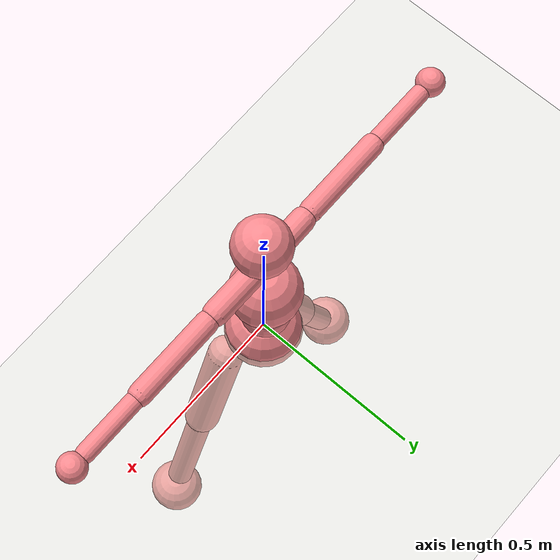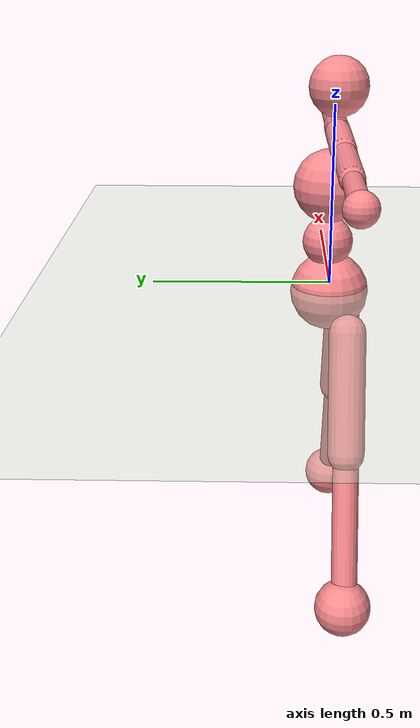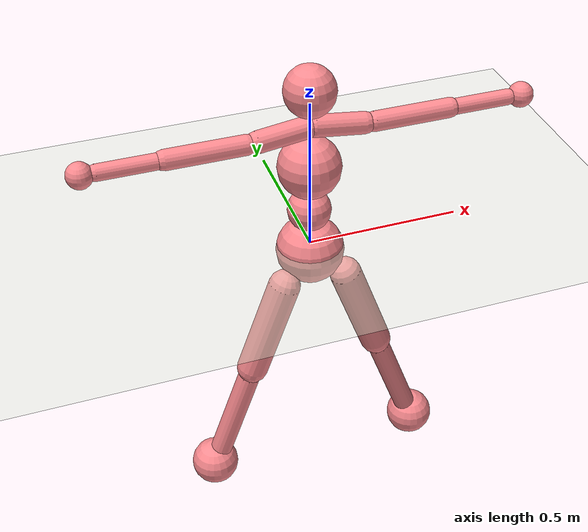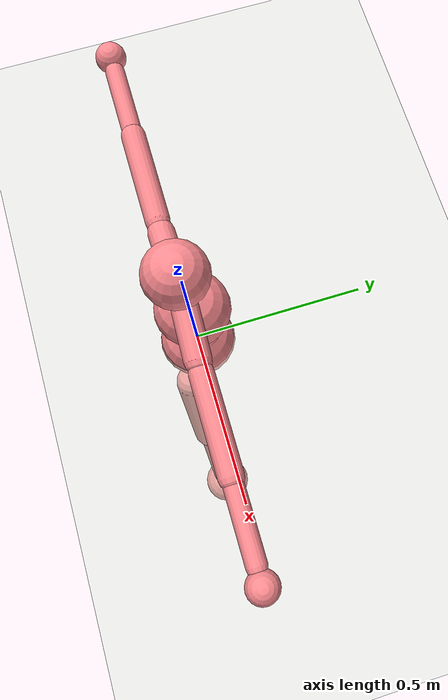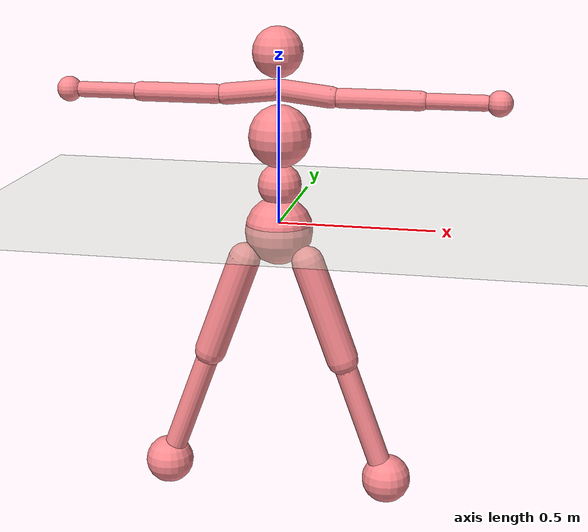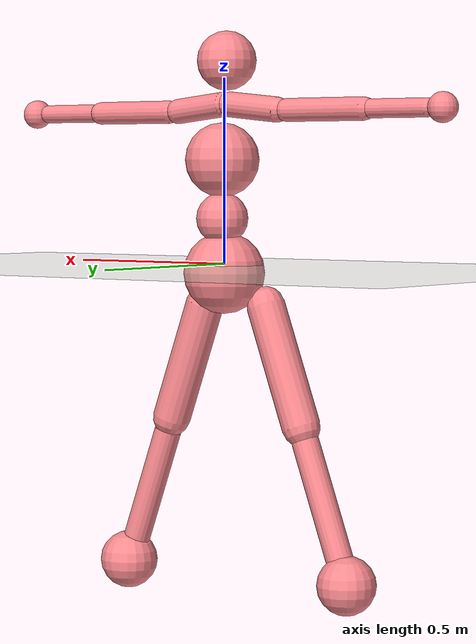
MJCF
<mujoco model="humanoid">
  <compiler angle="degree" inertiafromgeom="true" coordinate="global"/>
  <include file="./common/materials.xml"/>
  <asset>
    <mesh name="cone" file="./common/cone.stl" scale="0.025 0.025 0.04"/>
  </asset>
  <visual>
    <headlight ambient=".4 .4 .4" diffuse=".8 .8 .8" specular="0.3 0.3 0.3"/>
    <map znear=".01"/>
    <quality shadowsize="2048"/>
  </visual>
  <default>
    <joint damping="0.0" armature="0.01" stiffness="0.0" limited="true"/>
    <geom conaffinity="7" condim="1" contype="7" margin="0.001" material="self" rgba=".98 .54 .56 1."/>
    <default class="trans">
      <geom rgba="0.8 0.6 .4 0.3"/>
    </default>
  </default>
  <statistic extent="3" center="0 0 1"/>
  <option timestep="0.00222222222">
    <flag contact="disable"/>
  </option>
  <asset>
    <texture type="skybox" file="./common/sky1.png" gridsize="3 4" gridlayout=".U..LFRB.D.." width="8192" height="8192"/>
    <texture builtin="flat" height="1278" mark="cross" markrgb="1 1 1" name="texgeom" random="0.01" rgb1=".8 .6 .4" rgb2=".8 .6 .4" type="cube" width="127"/>
  </asset>
  <worldbody>
    <light cutoff="100" diffuse="1 1 1" dir="-0 0 -1.3" directional="true" exponent="1" pos="0 0 1.3" specular=".1 .1 .1"/>
    <geom condim="3" friction="1. .1 .1" material="grid_new" name="floor" pos="0 0 0" rgba=".8 .9 .8 1" size="100 100 .2" type="plane"/>
    <body name="root" user="0.0000 -0.0000 0.0000" pos="0.0000 -0.0000 0.0000">
      <joint armature="0.0" limited="false" name="root" pos="0.0000 -0.0000 0.0000" stiffness="0" type="free"/>
      <geom pos="0.0000 0.0000 -0.0240" size="0.1100" type="sphere"/>
      <body name="lhipjoint" user="0.0963 -0.0494 -0.0918" pos="0.0000 -0.0000 0.0000">
        <body name="lfemur" user="0.2274 -0.0494 -0.4521" pos="0.0963 -0.0494 -0.0918">
          <joint axis="0.0000 -1.0000 0.0000" name="lfemur_z" pos="0.0963 -0.0494 -0.0918" range="-60.0000 70.0000" type="hinge"/>
          <joint axis="-0.3420 -0.0000 0.9397" name="lfemur_y" pos="0.0963 -0.0494 -0.0918" range="-70.0000 70.0000" type="hinge"/>
          <joint axis="0.9397 0.0000 0.3420" name="lfemur_x" pos="0.0963 -0.0494 -0.0918" range="-160.0000 20.0000" type="hinge"/>
          <geom fromto="0.1031 -0.0494 -0.1106 0.2206 -0.0494 -0.4333" size="0.0520" type="capsule"/>
          <body name="ltibia" user="0.3657 -0.0494 -0.8321" pos="0.2274 -0.0494 -0.4521">
            <joint axis="0.9397 0.0000 0.3420" name="ltibia_x" pos="0.2274 -0.0494 -0.4521" range="0.0000 170.0000" type="hinge"/>
            <geom contype="1" conaffinity="1" fromto="0.2343 -0.0494 -0.4709 0.3589 -0.0494 -0.8133" size="0.0370" type="capsule"/>
            <body name="lfoot" user="0.3731 -0.0 -0.8523" pos="0.3657 -0.0494 -0.8321">
              <geom size="0.08" pos="0.3714 -0.045 -0.8442"/>
            </body>
          </body>
        </body>
      </body>
      <body name="rhipjoint" user="-0.0963 -0.0494 -0.0918" pos="-0.0000 -0.0000 0.0000">
        <body name="rfemur" user="-0.2274 -0.0494 -0.4521" pos="-0.0963 -0.0494 -0.0918">
          <joint axis="0.0000 -1.0000 -0.0000" name="rfemur_z" pos="-0.0963 -0.0494 -0.0918" range="-70.0000 60.0000" type="hinge"/>
          <joint axis="0.3420 -0.0000 0.9397" name="rfemur_y" pos="-0.0963 -0.0494 -0.0918" range="-70.0000 70.0000" type="hinge"/>
          <joint axis="0.9397 0.0000 -0.3420" name="rfemur_x" pos="-0.0963 -0.0494 -0.0918" range="-160.0000 20.0000" type="hinge"/>
          <geom fromto="-0.1031 -0.0494 -0.1106 -0.2206 -0.0494 -0.4333" size="0.0520" type="capsule"/>
          <body name="rtibia" user="-0.3657 -0.0494 -0.8321" pos="-0.2274 -0.0494 -0.4521">
            <joint axis="0.9397 0.0000 -0.3420" name="rtibia_x" pos="-0.2274 -0.0494 -0.4521" range="0.0000 170.0000" type="hinge"/>
            <geom contype="2" conaffinity="2" fromto="-0.2343 -0.0494 -0.4709 -0.3589 -0.0494 -0.8133" size="0.0370" type="capsule"/>
            <body name="rfoot" user="-0.3731 -0.0 -0.8523" pos="-0.3657 -0.0494 -0.8321">
              <geom size="0.08" pos="-0.3714 -0.045 -0.8442" type="sphere"/>
            </body>
          </body>
        </body>
      </body>
      <body name="lowerback" user="0.0006 0.0081 0.1132" pos="0.0000 -0.0000 0.0000">
        <body name="upperback" user="0.0011 0.0071 0.2268" pos="0.0006 0.0081 0.1132">
          <geom pos="0.0006 0.0081 0.1232" size="0.0700" type="sphere"/>
          <joint axis="0.0000 -1.0000 0.0000" name="upperback_z" pos="0.0006 0.0081 0.1132" range="-30.0000 30.0000" type="hinge"/>
          <joint axis="0.0000 -0.0000 1.0000" name="upperback_y" pos="0.0006 0.0081 0.1132" range="-30.0000 30.0000" type="hinge"/>
          <joint axis="1.0000 0.0000 0.0000" name="upperback_x" pos="0.0006 0.0081 0.1132" range="-20.0000 45.0000" type="hinge"/>
          <body name="thorax" user="0.0010 0.0024 0.3407" pos="0.0011 0.0071 0.2268">
            <geom pos="0.0011 0.0071 0.2808" size="0.1000" type="sphere"/>
            <body name="lowerneck" user="-0.0023 -0.0083 0.4312" pos="0.0010 0.0024 0.3407">
              <geom pos="-0.0023 -0.0083 0.5472" size="0.0800" type="sphere"/>
              <joint axis="0.0000 -1.0000 0.0000" name="lowerneck_z" pos="0.0010 0.0024 0.3407" range="-30.0000 30.0000" type="hinge"/>
              <joint axis="0.0000 -0.0000 1.0000" name="lowerneck_y" pos="0.0010 0.0024 0.3407" range="-30.0000 30.0000" type="hinge"/>
              <joint axis="1.0000 0.0000 0.0000" name="lowerneck_x" pos="0.0010 0.0024 0.3407" range="-20.0000 45.0000" type="hinge"/>
              <body name="upperneck" user="-0.0013 -0.0038 0.5212" pos="-0.0023 -0.0083 0.4312">
                <body name="head" user="-0.0006 -0.0008 0.6176" pos="-0.0013 -0.0038 0.5212">
                  <camera mode="fixed" xyaxes="-1 0 0 0 0 1"/>
                </body>
              </body>
              <body name="lclavicle" user="0.1790 -0.0149 0.4121" pos="-0.0023 -0.0083 0.4312">
                <geom fromto="0.0101 -0.0088 0.4299 0.1666 -0.0144 0.4134" size="0.0340" type="capsule"/>
                <joint axis="0.0000 -1.0000 0.0000" name="lclavicle_z" pos="0.0010 0.0024 0.3407" range="0.0000 20.0000" type="hinge"/>
                <joint axis="0.0000 -0.0000 1.0000" name="lclavicle_y" pos="0.0010 0.0024 0.3407" range="-20.0000 10.0000" type="hinge"/>
                <body name="lhumerus" user="0.4599 -0.0149 0.4121" pos="0.1790 -0.0149 0.4121">
                  <joint axis="-0.0000 0.8660 -0.5000" name="lhumerus_z" pos="0.1790 -0.0149 0.4121" range="-90.0000 90.0000" type="hinge"/>
                  <joint axis="-1.0000 -0.0000 -0.0000" name="lhumerus_y" pos="0.1790 -0.0149 0.4121" range="-90.0000 90.0000" type="hinge"/>
                  <joint axis="0.0000 -0.5000 -0.8660" name="lhumerus_x" pos="0.1790 -0.0149 0.4121" range="-60.0000 90.0000" type="hinge"/>
                  <geom fromto="0.1965 -0.0149 0.4121 0.4424 -0.0149 0.4121" size="0.0310" type="capsule"/>
                  <body name="lradius" user="0.6374 -0.0149 0.4121" pos="0.4599 -0.0149 0.4121">
                    <geom fromto="0.4599 -0.0149 0.4121 0.6374 -0.0149 0.4121" size="0.0250" type="capsule"/>
                    <joint axis="0.0000 -0.5000 -0.8660" name="lradius_x" pos="0.4599 -0.0149 0.4121" range="-10.0000 170.0000" type="hinge"/>
                    <body name="lwrist" user="0.7261 -0.0149 0.4121" pos="0.6374 -0.0149 0.4121">
                      <geom pos="0.6814 -0.0149 0.4121" size="0.0400" type="sphere"/>
                    </body>
                  </body>
                </body>
              </body>
              <body name="rclavicle" user="-0.1790 -0.0149 0.4121" pos="0.0023 -0.0083 0.4312">
                <geom fromto="-0.0101 -0.0088 0.4299 -0.1666 -0.0144 0.4134" size="0.0340" type="capsule"/>
                <joint axis="0.0000 -1.0000 0.0000" name="rclavicle_z" pos="-0.0010 0.0024 0.3407" range="-20.0000 0.0000" type="hinge"/>
                <joint axis="0.0000 -0.0000 1.0000" name="rclavicle_y" pos="-0.0010 0.0024 0.3407" range="-10.0000 20.0000" type="hinge"/>
                <body name="rhumerus" user="-0.4599 -0.0149 0.4121" pos="-0.1790 -0.0149 0.4121">
                  <joint axis="0.0000 0.8660 -0.5000" name="rhumerus_z" pos="-0.1790 -0.0149 0.4121" range="-90.0000 90.0000" type="hinge"/>
                  <joint axis="1.0000 -0.0000 -0.0000" name="rhumerus_y" pos="-0.1790 -0.0149 0.4121" range="-90.0000 90.0000" type="hinge"/>
                  <joint axis="0.0000 0.5000 0.8660" name="rhumerus_x" pos="-0.1790 -0.0149 0.4121" range="-90.0000 60.0000" type="hinge"/>
                  <geom fromto="-0.1965 -0.0149 0.4121 -0.4424 -0.0149 0.4121" size="0.0310" type="capsule"/>
                  <body name="rradius" user="-0.6374 -0.0149 0.4121" pos="-0.4599 -0.0149 0.4121">
                    <geom fromto="-0.4599 -0.0149 0.4121 -0.6374 -0.0149 0.4121" size="0.0250" type="capsule"/>
                    <joint axis="0.0000 0.5000 0.8660" name="rradius_x" pos="-0.4599 -0.0149 0.4121" range="-10.0000 170.0000" type="hinge"/>
                    <body name="rwrist" user="-0.7261 -0.0149 0.4121" pos="-0.6374 -0.0149 0.4121">
                      <geom pos="-0.6814 -0.0149 0.4121" size="0.0400" type="sphere"/>
                    </body>
                  </body>
                </body>
              </body>
            </body>
          </body>
        </body>
      </body>
    </body>
    <body name="1_root" user="0.0000 -0.0000 0.0000" pos="0.0000 -0.0000 0.0000">
      <joint armature="0.0" limited="false" name="1_root" pos="0.0000 -0.0000 0.0000" stiffness="0" type="free"/>
      <geom pos="0.0000 0.0000 -0.0240" size="0.1100" type="sphere"/>
      <body name="1_lhipjoint" user="0.0963 -0.0494 -0.0918" pos="0.0000 -0.0000 0.0000">
        <body name="1_lfemur" user="0.2274 -0.0494 -0.4521" pos="0.0963 -0.0494 -0.0918">
          <joint axis="0.0000 -1.0000 0.0000" name="1_lfemur_z" pos="0.0963 -0.0494 -0.0918" range="-60.0000 70.0000" type="hinge"/>
          <joint axis="-0.3420 -0.0000 0.9397" name="1_lfemur_y" pos="0.0963 -0.0494 -0.0918" range="-70.0000 70.0000" type="hinge"/>
          <joint axis="0.9397 0.0000 0.3420" name="1_lfemur_x" pos="0.0963 -0.0494 -0.0918" range="-160.0000 20.0000" type="hinge"/>
          <geom fromto="0.1031 -0.0494 -0.1106 0.2206 -0.0494 -0.4333" size="0.0520" type="capsule"/>
          <body name="1_ltibia" user="0.3657 -0.0494 -0.8321" pos="0.2274 -0.0494 -0.4521">
            <joint axis="0.9397 0.0000 0.3420" name="1_ltibia_x" pos="0.2274 -0.0494 -0.4521" range="0.0000 170.0000" type="hinge"/>
            <geom contype="1" conaffinity="1" fromto="0.2343 -0.0494 -0.4709 0.3589 -0.0494 -0.8133" size="0.0370" type="capsule"/>
            <body name="1_lfoot" user="0.3731 -0.0 -0.8523" pos="0.3657 -0.0494 -0.8321">
              <geom size="0.08" pos="0.3714 -0.045 -0.8442" type="sphere"/>
            </body>
          </body>
        </body>
      </body>
      <body name="1_rhipjoint" user="-0.0963 -0.0494 -0.0918" pos="-0.0000 -0.0000 0.0000">
        <body name="1_rfemur" user="-0.2274 -0.0494 -0.4521" pos="-0.0963 -0.0494 -0.0918">
          <joint axis="0.0000 -1.0000 -0.0000" name="1_rfemur_z" pos="-0.0963 -0.0494 -0.0918" range="-70.0000 60.0000" type="hinge"/>
          <joint axis="0.3420 -0.0000 0.9397" name="1_rfemur_y" pos="-0.0963 -0.0494 -0.0918" range="-70.0000 70.0000" type="hinge"/>
          <joint axis="0.9397 0.0000 -0.3420" name="1_rfemur_x" pos="-0.0963 -0.0494 -0.0918" range="-160.0000 20.0000" type="hinge"/>
          <geom fromto="-0.1031 -0.0494 -0.1106 -0.2206 -0.0494 -0.4333" size="0.0520" type="capsule"/>
          <body name="1_rtibia" user="-0.3657 -0.0494 -0.8321" pos="-0.2274 -0.0494 -0.4521">
            <joint axis="0.9397 0.0000 -0.3420" name="1_rtibia_x" pos="-0.2274 -0.0494 -0.4521" range="0.0000 170.0000" type="hinge"/>
            <geom contype="2" conaffinity="2" fromto="-0.2343 -0.0494 -0.4709 -0.3589 -0.0494 -0.8133" size="0.0370" type="capsule"/>
            <body name="1_rfoot" user="-0.3731 -0.0 -0.8523" pos="-0.3657 -0.0494 -0.8321">
              <geom size="0.08" pos="-0.3714 -0.045 -0.8442" type="sphere"/>
            </body>
          </body>
        </body>
      </body>
      <body name="1_lowerback" user="0.0006 0.0081 0.1132" pos="0.0000 -0.0000 0.0000">
        <body name="1_upperback" user="0.0011 0.0071 0.2268" pos="0.0006 0.0081 0.1132">
          <geom pos="0.0006 0.0081 0.1232" size="0.0700" type="sphere"/>
          <joint axis="0.0000 -1.0000 0.0000" name="1_upperback_z" pos="0.0006 0.0081 0.1132" range="-30.0000 30.0000" type="hinge"/>
          <joint axis="0.0000 -0.0000 1.0000" name="1_upperback_y" pos="0.0006 0.0081 0.1132" range="-30.0000 30.0000" type="hinge"/>
          <joint axis="1.0000 0.0000 0.0000" name="1_upperback_x" pos="0.0006 0.0081 0.1132" range="-20.0000 45.0000" type="hinge"/>
          <body name="1_thorax" user="0.0010 0.0024 0.3407" pos="0.0011 0.0071 0.2268">
            <geom pos="0.0011 0.0071 0.2808" size="0.1000" type="sphere"/>
            <body name="1_lowerneck" user="-0.0023 -0.0083 0.4312" pos="0.0010 0.0024 0.3407">
              <geom pos="-0.0023 -0.0083 0.5472" size="0.0800" type="sphere"/>
              <joint axis="0.0000 -1.0000 0.0000" name="1_lowerneck_z" pos="0.0010 0.0024 0.3407" range="-30.0000 30.0000" type="hinge"/>
              <joint axis="0.0000 -0.0000 1.0000" name="1_lowerneck_y" pos="0.0010 0.0024 0.3407" range="-30.0000 30.0000" type="hinge"/>
              <joint axis="1.0000 0.0000 0.0000" name="1_lowerneck_x" pos="0.0010 0.0024 0.3407" range="-20.0000 45.0000" type="hinge"/>
              <body name="1_upperneck" user="-0.0013 -0.0038 0.5212" pos="-0.0023 -0.0083 0.4312">
                <body name="1_head" user="-0.0006 -0.0008 0.6176" pos="-0.0013 -0.0038 0.5212">
                  <camera mode="fixed" xyaxes="-1 0 0 0 0 1"/>
                </body>
              </body>
              <body name="1_lclavicle" user="0.1790 -0.0149 0.4121" pos="-0.0023 -0.0083 0.4312">
                <geom fromto="0.0101 -0.0088 0.4299 0.1666 -0.0144 0.4134" size="0.0340" type="capsule"/>
                <joint axis="0.0000 -1.0000 0.0000" name="1_lclavicle_z" pos="0.0010 0.0024 0.3407" range="0.0000 20.0000" type="hinge"/>
                <joint axis="0.0000 -0.0000 1.0000" name="1_lclavicle_y" pos="0.0010 0.0024 0.3407" range="-20.0000 10.0000" type="hinge"/>
                <body name="1_lhumerus" user="0.4599 -0.0149 0.4121" pos="0.1790 -0.0149 0.4121">
                  <joint axis="-0.0000 0.8660 -0.5000" name="1_lhumerus_z" pos="0.1790 -0.0149 0.4121" range="-90.0000 90.0000" type="hinge"/>
                  <joint axis="-1.0000 -0.0000 -0.0000" name="1_lhumerus_y" pos="0.1790 -0.0149 0.4121" range="-90.0000 90.0000" type="hinge"/>
                  <joint axis="0.0000 -0.5000 -0.8660" name="1_lhumerus_x" pos="0.1790 -0.0149 0.4121" range="-60.0000 90.0000" type="hinge"/>
                  <geom fromto="0.1965 -0.0149 0.4121 0.4424 -0.0149 0.4121" size="0.0310" type="capsule"/>
                  <body name="1_lradius" user="0.6374 -0.0149 0.4121" pos="0.4599 -0.0149 0.4121">
                    <geom fromto="0.4599 -0.0149 0.4121 0.6374 -0.0149 0.4121" size="0.0250" type="capsule"/>
                    <joint axis="0.0000 -0.5000 -0.8660" name="1_lradius_x" pos="0.4599 -0.0149 0.4121" range="-10.0000 170.0000" type="hinge"/>
                    <body name="1_lwrist" user="0.7261 -0.0149 0.4121" pos="0.6374 -0.0149 0.4121">
                      <geom pos="0.6814 -0.0149 0.4121" size="0.0400" type="sphere"/>
                    </body>
                  </body>
                </body>
              </body>
              <body name="1_rclavicle" user="-0.1790 -0.0149 0.4121" pos="0.0023 -0.0083 0.4312">
                <geom fromto="-0.0101 -0.0088 0.4299 -0.1666 -0.0144 0.4134" size="0.0340" type="capsule"/>
                <joint axis="0.0000 -1.0000 0.0000" name="1_rclavicle_z" pos="-0.0010 0.0024 0.3407" range="-20.0000 0.0000" type="hinge"/>
                <joint axis="0.0000 -0.0000 1.0000" name="1_rclavicle_y" pos="-0.0010 0.0024 0.3407" range="-10.0000 20.0000" type="hinge"/>
                <body name="1_rhumerus" user="-0.4599 -0.0149 0.4121" pos="-0.1790 -0.0149 0.4121">
                  <joint axis="0.0000 0.8660 -0.5000" name="1_rhumerus_z" pos="-0.1790 -0.0149 0.4121" range="-90.0000 90.0000" type="hinge"/>
                  <joint axis="1.0000 -0.0000 -0.0000" name="1_rhumerus_y" pos="-0.1790 -0.0149 0.4121" range="-90.0000 90.0000" type="hinge"/>
                  <joint axis="0.0000 0.5000 0.8660" name="1_rhumerus_x" pos="-0.1790 -0.0149 0.4121" range="-90.0000 60.0000" type="hinge"/>
                  <geom fromto="-0.1965 -0.0149 0.4121 -0.4424 -0.0149 0.4121" size="0.0310" type="capsule"/>
                  <body name="1_rradius" user="-0.6374 -0.0149 0.4121" pos="-0.4599 -0.0149 0.4121">
                    <geom fromto="-0.4599 -0.0149 0.4121 -0.6374 -0.0149 0.4121" size="0.0250" type="capsule"/>
                    <joint axis="0.0000 0.5000 0.8660" name="1_rradius_x" pos="-0.4599 -0.0149 0.4121" range="-10.0000 170.0000" type="hinge"/>
                    <body name="1_rwrist" user="-0.7261 -0.0149 0.4121" pos="-0.6374 -0.0149 0.4121">
                      <geom pos="-0.6814 -0.0149 0.4121" size="0.0400" type="sphere"/>
                    </body>
                  </body>
                </body>
              </body>
            </body>
          </body>
        </body>
      </body>
    </body>
    <body pos="0 0 0">
      <geom mesh="cone" type="mesh" rgba="1 0 0 0"/>
    </body>
    <body pos="0 0 0">
      <geom mesh="cone" type="mesh" rgba="1 0 0 0"/>
    </body>
    <body pos="0 0 0">
      <geom mesh="cone" type="mesh" rgba="1 0 0 0"/>
    </body>
    <body pos="0 0 0">
      <geom mesh="cone" type="mesh" rgba="1 0 0 0"/>
    </body>
    <body pos="0 0 0">
      <geom mesh="cone" type="mesh" rgba="1 0 0 0"/>
    </body>
    <body pos="0 0 0">
      <geom mesh="cone" type="mesh" rgba="1 0 0 0"/>
    </body>
    <body pos="0 0 0">
      <geom mesh="cone" type="mesh" rgba="1 0 0 0"/>
    </body>
    <body pos="0 0 0">
      <geom mesh="cone" type="mesh" rgba="1 0 0 0"/>
    </body>
    <body pos="0 0 0">
      <geom mesh="cone" type="mesh" rgba="1 0 0 0"/>
    </body>
    <body pos="0 0 0">
      <geom mesh="cone" type="mesh" rgba="1 0 0 0"/>
    </body>
    <body pos="0 0 0">
      <geom mesh="cone" type="mesh" rgba="1 0 0 0"/>
    </body>
    <body pos="0 0 0">
      <geom mesh="cone" type="mesh" rgba="1 0 0 0"/>
    </body>
    <body pos="0 0 0">
      <geom mesh="cone" type="mesh" rgba="1 0 0 0"/>
    </body>
    <body pos="0 0 0">
      <geom mesh="cone" type="mesh" rgba="1 0 0 0"/>
    </body>
    <body pos="0 0 0">
      <geom mesh="cone" type="mesh" rgba="1 0 0 0"/>
    </body>
    <body pos="0 0 0">
      <geom mesh="cone" type="mesh" rgba="1 0 0 0"/>
    </body>
    <body pos="0 0 0">
      <geom mesh="cone" type="mesh" rgba="1 0 0 0"/>
    </body>
    <body pos="0 0 0">
      <geom mesh="cone" type="mesh" rgba="1 0 0 0"/>
    </body>
    <body pos="0 0 0">
      <geom mesh="cone" type="mesh" rgba="1 0 0 0"/>
    </body>
    <body pos="0 0 0">
      <geom mesh="cone" type="mesh" rgba="1 0 0 0"/>
    </body>
    <geom fromto="0.0 0.0 0.0 0.0 1.0 0.0" size="0.0420" rgba="0.8 0.6 .4 0" type="cylinder"/>
    <geom fromto="0.0 0.0 0.0 0.0 1.0 0.0" size="0.0420" rgba="0.8 0.6 .4 0" type="cylinder"/>
    <geom fromto="0.0 0.0 0.0 0.0 1.0 0.0" size="0.0420" rgba="0.8 0.6 .4 0" type="cylinder"/>
    <geom fromto="0.0 0.0 0.0 0.0 1.0 0.0" size="0.0420" rgba="0.8 0.6 .4 0" type="cylinder"/>
    <geom fromto="0.0 0.0 0.0 0.0 1.0 0.0" size="0.0420" rgba="0.8 0.6 .4 0" type="cylinder"/>
    <geom fromto="0.0 0.0 0.0 0.0 1.0 0.0" size="0.0420" rgba="0.8 0.6 .4 0" type="cylinder"/>
    <geom fromto="0.0 0.0 0.0 0.0 1.0 0.0" size="0.0420" rgba="0.8 0.6 .4 0" type="cylinder"/>
    <geom fromto="0.0 0.0 0.0 0.0 1.0 0.0" size="0.0420" rgba="0.8 0.6 .4 0" type="cylinder"/>
    <geom fromto="0.0 0.0 0.0 0.0 1.0 0.0" size="0.0420" rgba="0.8 0.6 .4 0" type="cylinder"/>
    <geom fromto="0.0 0.0 0.0 0.0 1.0 0.0" size="0.0420" rgba="0.8 0.6 .4 0" type="cylinder"/>
    <geom fromto="0.0 0.0 0.0 0.0 1.0 0.0" size="0.0420" rgba="0.8 0.6 .4 0" type="cylinder"/>
    <geom fromto="0.0 0.0 0.0 0.0 1.0 0.0" size="0.0420" rgba="0.8 0.6 .4 0" type="cylinder"/>
    <geom fromto="0.0 0.0 0.0 0.0 1.0 0.0" size="0.0420" rgba="0.8 0.6 .4 0" type="cylinder"/>
    <geom fromto="0.0 0.0 0.0 0.0 1.0 0.0" size="0.0420" rgba="0.8 0.6 .4 0" type="cylinder"/>
    <geom fromto="0.0 0.0 0.0 0.0 1.0 0.0" size="0.0420" rgba="0.8 0.6 .4 0" type="cylinder"/>
    <geom fromto="0.0 0.0 0.0 0.0 1.0 0.0" size="0.0420" rgba="0.8 0.6 .4 0" type="cylinder"/>
    <geom fromto="0.0 0.0 0.0 0.0 1.0 0.0" size="0.0420" rgba="0.8 0.6 .4 0" type="cylinder"/>
    <geom fromto="0.0 0.0 0.0 0.0 1.0 0.0" size="0.0420" rgba="0.8 0.6 .4 0" type="cylinder"/>
    <geom fromto="0.0 0.0 0.0 0.0 1.0 0.0" size="0.0420" rgba="0.8 0.6 .4 0" type="cylinder"/>
    <geom fromto="0.0 0.0 0.0 0.0 1.0 0.0" size="0.0420" rgba="0.8 0.6 .4 0" type="cylinder"/>
  </worldbody>
</mujoco>

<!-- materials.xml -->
<!--
Common textures, colors and materials to be used throughout this suite. Some
materials such as xxx_highlight are activated on occurence of certain events,
for example receiving a positive reward.
-->
<mujoco>
  <asset>
    <texture name="grid" type="2d" builtin="checker" rgb1=".1 .2 .3" rgb2=".2 .3 .4" width="300" height="300" mark="edge" markrgb=".2 .3 .4"/>
    <texture name="grid_new" type="2d" builtin="checker" rgb1=".1 .3 .2" rgb2=".2 .4 .3" width="1000" height="1000" mark="none" markrgb=".8 .6 .4"/>
    <texture builtin="checker" height="100" name="texplane" rgb1="0 0 0" rgb2=".8 .8 .8" type="2d" width="100"/>
    <texture name="grass" file="./common/grass.png" type="2d"/>
    <material name="grid" texture="grid" texrepeat="1 1" texuniform="true" reflectance=".2"/>
    <material name="grid_new" texture="grid_new" texrepeat="0.2 0.2" texuniform="true" reflectance=".2"/>
    <material name="MatPlane" reflectance="0.5" shininess="1" specular="1" texrepeat="60 60" texture="texplane"/>
    <material name="GrassPlane" reflectance="0.0" shininess="1" specular="1" texrepeat="400 400" texture="grass"/>
    <material name="self" rgba=".7 .5 .3 1"/>
    <material name="self_default" rgba=".7 .5 .3 1"/>
    <material name="self_highlight" rgba="0 .5 .3 1"/>
    <material name="effector" rgba=".7 .4 .2 1"/>
    <material name="effector_default" rgba=".7 .4 .2 1"/>
    <material name="effector_highlight" rgba="0 .5 .3 1"/>
    <material name="decoration" rgba=".3 .5 .7 1"/>
    <material name="eye" rgba="0 .2 1 1"/>
    <material name="target" rgba=".6 .3 .3 1"/>
    <material name="target_default" rgba=".6 .3 .3 1"/>
    <material name="target_highlight" rgba=".6 .3 .3 .4"/>
    <material name="expert" rgba=".6 .3 .3 .4"/>
  </asset>
</mujoco>
